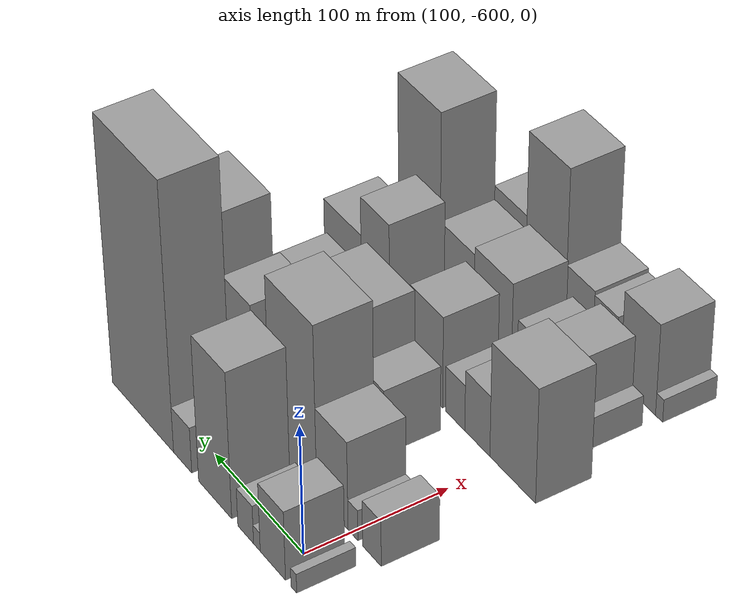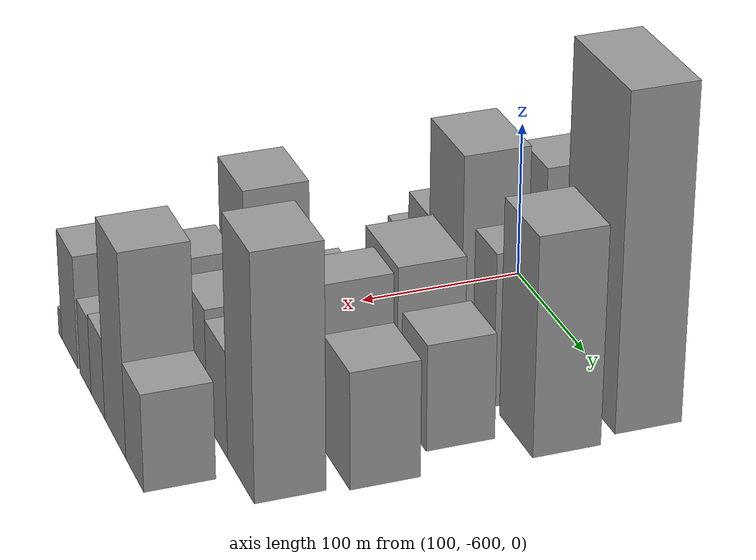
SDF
<sdf version="1.6">
 <world name="default">
  <model name="building_7">
   <static>1</static>
   <pose>100.0000 -621.9968 0 0.000000 0.000000 0.000000</pose>
   <link name="link">
    <pose>0 0 7.50 0 0 0</pose>
    <collision name="collision"><geometry><box><size>40.0000 6.2674 15.0000</size></box></geometry></collision>
    <visual name="visual">
     <cast_shadows>0</cast_shadows>
     <geometry><box><size>40.0000 6.2674 15.0000</size></box></geometry>
     <material>
      <script>
       <uri>model://grey_wall/materials/scripts</uri>
       <uri>model://grey_wall/materials/textures</uri>
       <name>vrc/grey_wall</name>
      </script>
     </material>
    </visual>
   </link>
  </model>
  <model name="building_8">
   <static>1</static>
   <pose>100.0000 -598.8530 0 0.000000 0.000000 0.000000</pose>
   <link name="link">
    <pose>0 0 27.00 0 0 0</pose>
    <collision name="collision"><geometry><box><size>40.0000 28.0203 54.0000</size></box></geometry></collision>
    <visual name="visual">
     <cast_shadows>0</cast_shadows>
     <geometry><box><size>40.0000 28.0203 54.0000</size></box></geometry>
     <material>
      <script>
       <uri>model://grey_wall/materials/scripts</uri>
       <uri>model://grey_wall/materials/textures</uri>
       <name>vrc/grey_wall</name>
      </script>
     </material>
    </visual>
   </link>
  </model>
  <model name="building_9">
   <static>1</static>
   <pose>100.0000 -581.1232 0 0.000000 0.000000 0.000000</pose>
   <link name="link">
    <pose>0 0 7.50 0 0 0</pose>
    <collision name="collision"><geometry><box><size>40.0000 7.4392 15.0000</size></box></geometry></collision>
    <visual name="visual">
     <cast_shadows>0</cast_shadows>
     <geometry><box><size>40.0000 7.4392 15.0000</size></box></geometry>
     <material>
      <script>
       <uri>model://grey_wall/materials/scripts</uri>
       <uri>model://grey_wall/materials/textures</uri>
       <name>vrc/grey_wall</name>
      </script>
     </material>
    </visual>
   </link>
  </model>
  <model name="building_10">
   <static>1</static>
   <pose>100.0000 -568.5045 0 0.000000 0.000000 0.000000</pose>
   <link name="link">
    <pose>0 0 15.00 0 0 0</pose>
    <collision name="collision"><geometry><box><size>40.0000 17.7981 30.0000</size></box></geometry></collision>
    <visual name="visual">
     <cast_shadows>0</cast_shadows>
     <geometry><box><size>40.0000 17.7981 30.0000</size></box></geometry>
     <material>
      <script>
       <uri>model://grey_wall/materials/scripts</uri>
       <uri>model://grey_wall/materials/textures</uri>
       <name>vrc/grey_wall</name>
      </script>
     </material>
    </visual>
   </link>
  </model>
  <model name="building_11">
   <static>1</static>
   <pose>100.0000 -533.4945 0 0.000000 0.000000 0.000000</pose>
   <link name="link">
    <pose>0 0 57.00 0 0 0</pose>
    <collision name="collision"><geometry><box><size>40.0000 38.2220 114.0000</size></box></geometry></collision>
    <visual name="visual">
     <cast_shadows>0</cast_shadows>
     <geometry><box><size>40.0000 38.2220 114.0000</size></box></geometry>
     <material>
      <script>
       <uri>model://grey_wall/materials/scripts</uri>
       <uri>model://grey_wall/materials/textures</uri>
       <name>vrc/grey_wall</name>
      </script>
     </material>
    </visual>
   </link>
  </model>
  <model name="building_12">
   <static>1</static>
   <pose>100.0000 -495.6311 0 0.000000 0.000000 0.000000</pose>
   <link name="link">
    <pose>0 0 18.00 0 0 0</pose>
    <collision name="collision"><geometry><box><size>40.0000 21.5048 36.0000</size></box></geometry></collision>
    <visual name="visual">
     <cast_shadows>0</cast_shadows>
     <geometry><box><size>40.0000 21.5048 36.0000</size></box></geometry>
     <material>
      <script>
       <uri>model://grey_wall/materials/scripts</uri>
       <uri>model://grey_wall/materials/textures</uri>
       <name>vrc/grey_wall</name>
      </script>
     </material>
    </visual>
   </link>
  </model>
  <model name="building_13">
   <static>1</static>
   <pose>100.0000 -447.6939 0 0.000000 0.000000 0.000000</pose>
   <link name="link">
    <pose>0 0 103.50 0 0 0</pose>
    <collision name="collision"><geometry><box><size>40.0000 74.3696 207.0000</size></box></geometry></collision>
    <visual name="visual">
     <cast_shadows>0</cast_shadows>
     <geometry><box><size>40.0000 74.3696 207.0000</size></box></geometry>
     <material>
      <script>
       <uri>model://grey_wall/materials/scripts</uri>
       <uri>model://grey_wall/materials/textures</uri>
       <name>vrc/grey_wall</name>
      </script>
     </material>
    </visual>
   </link>
  </model>
  <model name="building_56">
   <static>1</static>
   <pose>152.0000 -623.2239 0 0.000000 0.000000 0.000000</pose>
   <link name="link">
    <pose>0 0 18.00 0 0 0</pose>
    <collision name="collision"><geometry><box><size>40.0000 20.0781 36.0000</size></box></geometry></collision>
    <visual name="visual">
     <cast_shadows>0</cast_shadows>
     <geometry><box><size>40.0000 20.0781 36.0000</size></box></geometry>
     <material>
      <script>
       <uri>model://grey_wall/materials/scripts</uri>
       <uri>model://grey_wall/materials/textures</uri>
       <name>vrc/grey_wall</name>
      </script>
     </material>
    </visual>
   </link>
  </model>
  <model name="building_57">
   <static>1</static>
   <pose>152.0000 -602.8042 0 0.000000 0.000000 0.000000</pose>
   <link name="link">
    <pose>0 0 12.00 0 0 0</pose>
    <collision name="collision"><geometry><box><size>40.0000 10.7614 24.0000</size></box></geometry></collision>
    <visual name="visual">
     <cast_shadows>0</cast_shadows>
     <geometry><box><size>40.0000 10.7614 24.0000</size></box></geometry>
     <material>
      <script>
       <uri>model://grey_wall/materials/scripts</uri>
       <uri>model://grey_wall/materials/textures</uri>
       <name>vrc/grey_wall</name>
      </script>
     </material>
    </visual>
   </link>
  </model>
  <model name="building_58">
   <static>1</static>
   <pose>152.0000 -580.1652 0 0.000000 0.000000 0.000000</pose>
   <link name="link">
    <pose>0 0 34.50 0 0 0</pose>
    <collision name="collision"><geometry><box><size>40.0000 34.5166 69.0000</size></box></geometry></collision>
    <visual name="visual">
     <cast_shadows>0</cast_shadows>
     <geometry><box><size>40.0000 34.5166 69.0000</size></box></geometry>
     <material>
      <script>
       <uri>model://grey_wall/materials/scripts</uri>
       <uri>model://grey_wall/materials/textures</uri>
       <name>vrc/grey_wall</name>
      </script>
     </material>
    </visual>
   </link>
  </model>
  <model name="building_59">
   <static>1</static>
   <pose>152.0000 -536.6272 0 0.000000 0.000000 0.000000</pose>
   <link name="link">
    <pose>0 0 66.00 0 0 0</pose>
    <collision name="collision"><geometry><box><size>40.0000 52.5594 132.0000</size></box></geometry></collision>
    <visual name="visual">
     <cast_shadows>0</cast_shadows>
     <geometry><box><size>40.0000 52.5594 132.0000</size></box></geometry>
     <material>
      <script>
       <uri>model://grey_wall/materials/scripts</uri>
       <uri>model://grey_wall/materials/textures</uri>
       <name>vrc/grey_wall</name>
      </script>
     </material>
    </visual>
   </link>
  </model>
  <model name="building_60">
   <static>1</static>
   <pose>152.0000 -501.2049 0 0.000000 0.000000 0.000000</pose>
   <link name="link">
    <pose>0 0 18.00 0 0 0</pose>
    <collision name="collision"><geometry><box><size>40.0000 18.2852 36.0000</size></box></geometry></collision>
    <visual name="visual">
     <cast_shadows>0</cast_shadows>
     <geometry><box><size>40.0000 18.2852 36.0000</size></box></geometry>
     <material>
      <script>
       <uri>model://grey_wall/materials/scripts</uri>
       <uri>model://grey_wall/materials/textures</uri>
       <name>vrc/grey_wall</name>
      </script>
     </material>
    </visual>
   </link>
  </model>
  <model name="building_61">
   <static>1</static>
   <pose>152.0000 -476.0981 0 0.000000 0.000000 0.000000</pose>
   <link name="link">
    <pose>0 0 48.00 0 0 0</pose>
    <collision name="collision"><geometry><box><size>40.0000 31.9284 96.0000</size></box></geometry></collision>
    <visual name="visual">
     <cast_shadows>0</cast_shadows>
     <geometry><box><size>40.0000 31.9284 96.0000</size></box></geometry>
     <material>
      <script>
       <uri>model://grey_wall/materials/scripts</uri>
       <uri>model://grey_wall/materials/textures</uri>
       <name>vrc/grey_wall</name>
      </script>
     </material>
    </visual>
   </link>
  </model>
  <model name="building_62">
   <static>1</static>
   <pose>152.0000 -426.9603 0 0.000000 0.000000 0.000000</pose>
   <link name="link">
    <pose>0 0 67.50 0 0 0</pose>
    <collision name="collision"><geometry><box><size>40.0000 48.3472 135.0000</size></box></geometry></collision>
    <visual name="visual">
     <cast_shadows>0</cast_shadows>
     <geometry><box><size>40.0000 48.3472 135.0000</size></box></geometry>
     <material>
      <script>
       <uri>model://grey_wall/materials/scripts</uri>
       <uri>model://grey_wall/materials/textures</uri>
       <name>vrc/grey_wall</name>
      </script>
     </material>
    </visual>
   </link>
  </model>
  <model name="building_104">
   <static>1</static>
   <pose>204.0000 -541.0354 0 0.000000 0.000000 0.000000</pose>
   <link name="link">
    <pose>0 0 25.50 0 0 0</pose>
    <collision name="collision"><geometry><box><size>40.0000 28.1655 51.0000</size></box></geometry></collision>
    <visual name="visual">
     <cast_shadows>0</cast_shadows>
     <geometry><box><size>40.0000 28.1655 51.0000</size></box></geometry>
     <material>
      <script>
       <uri>model://grey_wall/materials/scripts</uri>
       <uri>model://grey_wall/materials/textures</uri>
       <name>vrc/grey_wall</name>
      </script>
     </material>
    </visual>
   </link>
  </model>
  <model name="building_105">
   <static>1</static>
   <pose>204.0000 -500.5286 0 0.000000 0.000000 0.000000</pose>
   <link name="link">
    <pose>0 0 45.00 0 0 0</pose>
    <collision name="collision"><geometry><box><size>40.0000 52.8481 90.0000</size></box></geometry></collision>
    <visual name="visual">
     <cast_shadows>0</cast_shadows>
     <geometry><box><size>40.0000 52.8481 90.0000</size></box></geometry>
     <material>
      <script>
       <uri>model://grey_wall/materials/scripts</uri>
       <uri>model://grey_wall/materials/textures</uri>
       <name>vrc/grey_wall</name>
      </script>
     </material>
    </visual>
   </link>
  </model>
  <model name="building_106">
   <static>1</static>
   <pose>204.0000 -447.7052 0 0.000000 0.000000 0.000000</pose>
   <link name="link">
    <pose>0 0 33.00 0 0 0</pose>
    <collision name="collision"><geometry><box><size>40.0000 38.7988 66.0000</size></box></geometry></collision>
    <visual name="visual">
     <cast_shadows>0</cast_shadows>
     <geometry><box><size>40.0000 38.7988 66.0000</size></box></geometry>
     <material>
      <script>
       <uri>model://grey_wall/materials/scripts</uri>
       <uri>model://grey_wall/materials/textures</uri>
       <name>vrc/grey_wall</name>
      </script>
     </material>
    </visual>
   </link>
  </model>
  <model name="building_151">
   <static>1</static>
   <pose>256.0000 -614.3917 0 0.000000 0.000000 0.000000</pose>
   <link name="link">
    <pose>0 0 45.00 0 0 0</pose>
    <collision name="collision"><geometry><box><size>40.0000 48.0555 90.0000</size></box></geometry></collision>
    <visual name="visual">
     <cast_shadows>0</cast_shadows>
     <geometry><box><size>40.0000 48.0555 90.0000</size></box></geometry>
     <material>
      <script>
       <uri>model://grey_wall/materials/scripts</uri>
       <uri>model://grey_wall/materials/textures</uri>
       <name>vrc/grey_wall</name>
      </script>
     </material>
    </visual>
   </link>
  </model>
  <model name="building_152">
   <static>1</static>
   <pose>256.0000 -576.9121 0 0.000000 0.000000 0.000000</pose>
   <link name="link">
    <pose>0 0 24.00 0 0 0</pose>
    <collision name="collision"><geometry><box><size>40.0000 26.9036 48.0000</size></box></geometry></collision>
    <visual name="visual">
     <cast_shadows>0</cast_shadows>
     <geometry><box><size>40.0000 26.9036 48.0000</size></box></geometry>
     <material>
      <script>
       <uri>model://grey_wall/materials/scripts</uri>
       <uri>model://grey_wall/materials/textures</uri>
       <name>vrc/grey_wall</name>
      </script>
     </material>
    </visual>
   </link>
  </model>
  <model name="building_153">
   <static>1</static>
   <pose>256.0000 -552.8810 0 0.000000 0.000000 0.000000</pose>
   <link name="link">
    <pose>0 0 18.00 0 0 0</pose>
    <collision name="collision"><geometry><box><size>40.0000 21.1588 36.0000</size></box></geometry></collision>
    <visual name="visual">
     <cast_shadows>0</cast_shadows>
     <geometry><box><size>40.0000 21.1588 36.0000</size></box></geometry>
     <material>
      <script>
       <uri>model://grey_wall/materials/scripts</uri>
       <uri>model://grey_wall/materials/textures</uri>
       <name>vrc/grey_wall</name>
      </script>
     </material>
    </visual>
   </link>
  </model>
  <model name="building_154">
   <static>1</static>
   <pose>256.0000 -521.2130 0 0.000000 0.000000 0.000000</pose>
   <link name="link">
    <pose>0 0 36.00 0 0 0</pose>
    <collision name="collision"><geometry><box><size>40.0000 36.1773 72.0000</size></box></geometry></collision>
    <visual name="visual">
     <cast_shadows>0</cast_shadows>
     <geometry><box><size>40.0000 36.1773 72.0000</size></box></geometry>
     <material>
      <script>
       <uri>model://grey_wall/materials/scripts</uri>
       <uri>model://grey_wall/materials/textures</uri>
       <name>vrc/grey_wall</name>
      </script>
     </material>
    </visual>
   </link>
  </model>
  <model name="building_155">
   <static>1</static>
   <pose>256.0000 -492.0850 0 0.000000 0.000000 0.000000</pose>
   <link name="link">
    <pose>0 0 7.50 0 0 0</pose>
    <collision name="collision"><geometry><box><size>40.0000 6.0787 15.0000</size></box></geometry></collision>
    <visual name="visual">
     <cast_shadows>0</cast_shadows>
     <geometry><box><size>40.0000 6.0787 15.0000</size></box></geometry>
     <material>
      <script>
       <uri>model://grey_wall/materials/scripts</uri>
       <uri>model://grey_wall/materials/textures</uri>
       <name>vrc/grey_wall</name>
      </script>
     </material>
    </visual>
   </link>
  </model>
  <model name="building_156">
   <static>1</static>
   <pose>256.0000 -464.0402 0 0.000000 0.000000 0.000000</pose>
   <link name="link">
    <pose>0 0 51.00 0 0 0</pose>
    <collision name="collision"><geometry><box><size>40.0000 32.0108 102.0000</size></box></geometry></collision>
    <visual name="visual">
     <cast_shadows>0</cast_shadows>
     <geometry><box><size>40.0000 32.0108 102.0000</size></box></geometry>
     <material>
      <script>
       <uri>model://grey_wall/materials/scripts</uri>
       <uri>model://grey_wall/materials/textures</uri>
       <name>vrc/grey_wall</name>
      </script>
     </material>
    </visual>
   </link>
  </model>
  <model name="building_157">
   <static>1</static>
   <pose>256.0000 -426.6441 0 0.000000 0.000000 0.000000</pose>
   <link name="link">
    <pose>0 0 36.00 0 0 0</pose>
    <collision name="collision"><geometry><box><size>40.0000 42.7813 72.0000</size></box></geometry></collision>
    <visual name="visual">
     <cast_shadows>0</cast_shadows>
     <geometry><box><size>40.0000 42.7813 72.0000</size></box></geometry>
     <material>
      <script>
       <uri>model://grey_wall/materials/scripts</uri>
       <uri>model://grey_wall/materials/textures</uri>
       <name>vrc/grey_wall</name>
      </script>
     </material>
    </visual>
   </link>
  </model>
  <model name="building_202">
   <static>1</static>
   <pose>308.0000 -611.9041 0 0.000000 0.000000 0.000000</pose>
   <link name="link">
    <pose>0 0 12.00 0 0 0</pose>
    <collision name="collision"><geometry><box><size>40.0000 11.0469 24.0000</size></box></geometry></collision>
    <visual name="visual">
     <cast_shadows>0</cast_shadows>
     <geometry><box><size>40.0000 11.0469 24.0000</size></box></geometry>
     <material>
      <script>
       <uri>model://grey_wall/materials/scripts</uri>
       <uri>model://grey_wall/materials/textures</uri>
       <name>vrc/grey_wall</name>
      </script>
     </material>
    </visual>
   </link>
  </model>
  <model name="building_203">
   <static>1</static>
   <pose>308.0000 -588.6320 0 0.000000 0.000000 0.000000</pose>
   <link name="link">
    <pose>0 0 31.50 0 0 0</pose>
    <collision name="collision"><geometry><box><size>40.0000 35.4973 63.0000</size></box></geometry></collision>
    <visual name="visual">
     <cast_shadows>0</cast_shadows>
     <geometry><box><size>40.0000 35.4973 63.0000</size></box></geometry>
     <material>
      <script>
       <uri>model://grey_wall/materials/scripts</uri>
       <uri>model://grey_wall/materials/textures</uri>
       <name>vrc/grey_wall</name>
      </script>
     </material>
    </visual>
   </link>
  </model>
  <model name="building_204">
   <static>1</static>
   <pose>308.0000 -556.6472 0 0.000000 0.000000 0.000000</pose>
   <link name="link">
    <pose>0 0 24.00 0 0 0</pose>
    <collision name="collision"><geometry><box><size>40.0000 28.4723 48.0000</size></box></geometry></collision>
    <visual name="visual">
     <cast_shadows>0</cast_shadows>
     <geometry><box><size>40.0000 28.4723 48.0000</size></box></geometry>
     <material>
      <script>
       <uri>model://grey_wall/materials/scripts</uri>
       <uri>model://grey_wall/materials/textures</uri>
       <name>vrc/grey_wall</name>
      </script>
     </material>
    </visual>
   </link>
  </model>
  <model name="building_205">
   <static>1</static>
   <pose>308.0000 -515.7743 0 0.000000 0.000000 0.000000</pose>
   <link name="link">
    <pose>0 0 36.00 0 0 0</pose>
    <collision name="collision"><geometry><box><size>40.0000 41.2733 72.0000</size></box></geometry></collision>
    <visual name="visual">
     <cast_shadows>0</cast_shadows>
     <geometry><box><size>40.0000 41.2733 72.0000</size></box></geometry>
     <material>
      <script>
       <uri>model://grey_wall/materials/scripts</uri>
       <uri>model://grey_wall/materials/textures</uri>
       <name>vrc/grey_wall</name>
      </script>
     </material>
    </visual>
   </link>
  </model>
  <model name="building_206">
   <static>1</static>
   <pose>308.0000 -476.1664 0 0.000000 0.000000 0.000000</pose>
   <link name="link">
    <pose>0 0 33.00 0 0 0</pose>
    <collision name="collision"><geometry><box><size>40.0000 37.9426 66.0000</size></box></geometry></collision>
    <visual name="visual">
     <cast_shadows>0</cast_shadows>
     <geometry><box><size>40.0000 37.9426 66.0000</size></box></geometry>
     <material>
      <script>
       <uri>model://grey_wall/materials/scripts</uri>
       <uri>model://grey_wall/materials/textures</uri>
       <name>vrc/grey_wall</name>
      </script>
     </material>
    </visual>
   </link>
  </model>
  <model name="building_207">
   <static>1</static>
   <pose>308.0000 -433.2798 0 0.000000 0.000000 0.000000</pose>
   <link name="link">
    <pose>0 0 75.00 0 0 0</pose>
    <collision name="collision"><geometry><box><size>40.0000 47.8307 150.0000</size></box></geometry></collision>
    <visual name="visual">
     <cast_shadows>0</cast_shadows>
     <geometry><box><size>40.0000 47.8307 150.0000</size></box></geometry>
     <material>
      <script>
       <uri>model://grey_wall/materials/scripts</uri>
       <uri>model://grey_wall/materials/textures</uri>
       <name>vrc/grey_wall</name>
      </script>
     </material>
    </visual>
   </link>
  </model>
  <model name="building_253">
   <static>1</static>
   <pose>360.0000 -618.2134 0 0.000000 0.000000 0.000000</pose>
   <link name="link">
    <pose>0 0 9.00 0 0 0</pose>
    <collision name="collision"><geometry><box><size>40.0000 7.3037 18.0000</size></box></geometry></collision>
    <visual name="visual">
     <cast_shadows>0</cast_shadows>
     <geometry><box><size>40.0000 7.3037 18.0000</size></box></geometry>
     <material>
      <script>
       <uri>model://grey_wall/materials/scripts</uri>
       <uri>model://grey_wall/materials/textures</uri>
       <name>vrc/grey_wall</name>
      </script>
     </material>
    </visual>
   </link>
  </model>
  <model name="building_254">
   <static>1</static>
   <pose>360.0000 -596.3751 0 0.000000 0.000000 0.000000</pose>
   <link name="link">
    <pose>0 0 36.00 0 0 0</pose>
    <collision name="collision"><geometry><box><size>40.0000 36.3730 72.0000</size></box></geometry></collision>
    <visual name="visual">
     <cast_shadows>0</cast_shadows>
     <geometry><box><size>40.0000 36.3730 72.0000</size></box></geometry>
     <material>
      <script>
       <uri>model://grey_wall/materials/scripts</uri>
       <uri>model://grey_wall/materials/textures</uri>
       <name>vrc/grey_wall</name>
      </script>
     </material>
    </visual>
   </link>
  </model>
  <model name="building_255">
   <static>1</static>
   <pose>360.0000 -560.8925 0 0.000000 0.000000 0.000000</pose>
   <link name="link">
    <pose>0 0 24.00 0 0 0</pose>
    <collision name="collision"><geometry><box><size>40.0000 24.5923 48.0000</size></box></geometry></collision>
    <visual name="visual">
     <cast_shadows>0</cast_shadows>
     <geometry><box><size>40.0000 24.5923 48.0000</size></box></geometry>
     <material>
      <script>
       <uri>model://grey_wall/materials/scripts</uri>
       <uri>model://grey_wall/materials/textures</uri>
       <name>vrc/grey_wall</name>
      </script>
     </material>
    </visual>
   </link>
  </model>
  <model name="building_256">
   <static>1</static>
   <pose>360.0000 -533.8107 0 0.000000 0.000000 0.000000</pose>
   <link name="link">
    <pose>0 0 25.50 0 0 0</pose>
    <collision name="collision"><geometry><box><size>40.0000 29.5712 51.0000</size></box></geometry></collision>
    <visual name="visual">
     <cast_shadows>0</cast_shadows>
     <geometry><box><size>40.0000 29.5712 51.0000</size></box></geometry>
     <material>
      <script>
       <uri>model://grey_wall/materials/scripts</uri>
       <uri>model://grey_wall/materials/textures</uri>
       <name>vrc/grey_wall</name>
      </script>
     </material>
    </visual>
   </link>
  </model>
  <model name="building_257">
   <static>1</static>
   <pose>360.0000 -497.1707 0 0.000000 0.000000 0.000000</pose>
   <link name="link">
    <pose>0 0 63.00 0 0 0</pose>
    <collision name="collision"><geometry><box><size>40.0000 43.7088 126.0000</size></box></geometry></collision>
    <visual name="visual">
     <cast_shadows>0</cast_shadows>
     <geometry><box><size>40.0000 43.7088 126.0000</size></box></geometry>
     <material>
      <script>
       <uri>model://grey_wall/materials/scripts</uri>
       <uri>model://grey_wall/materials/textures</uri>
       <name>vrc/grey_wall</name>
      </script>
     </material>
    </visual>
   </link>
  </model>
  <model name="building_258">
   <static>1</static>
   <pose>360.0000 -457.4712 0 0.000000 0.000000 0.000000</pose>
   <link name="link">
    <pose>0 0 30.00 0 0 0</pose>
    <collision name="collision"><geometry><box><size>40.0000 35.6901 60.0000</size></box></geometry></collision>
    <visual name="visual">
     <cast_shadows>0</cast_shadows>
     <geometry><box><size>40.0000 35.6901 60.0000</size></box></geometry>
     <material>
      <script>
       <uri>model://grey_wall/materials/scripts</uri>
       <uri>model://grey_wall/materials/textures</uri>
       <name>vrc/grey_wall</name>
      </script>
     </material>
    </visual>
   </link>
  </model>
 </world>
</sdf>
